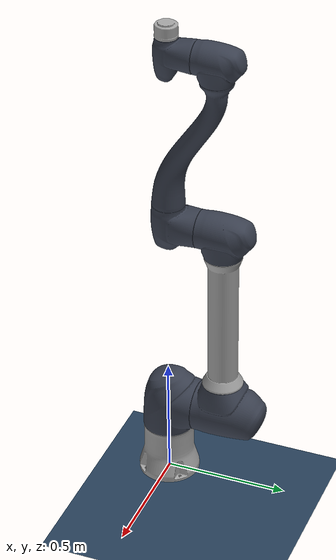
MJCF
<?xml version='1.0' encoding='utf-8'?>
<mujoco model="h2017 scene">
  <include file="h2017.xml" />
  <compiler angle="radian" meshdir="../" />

  <statistic center="0.3 0 0.4" extent="1" />

  <visual>
    <headlight diffuse="0.6 0.6 0.6" ambient="0.3 0.3 0.3" specular="0 0 0" />
    <rgba haze="0.15 0.25 0.35 1" />
    <global azimuth="120" elevation="-20" />
  </visual>

  <asset>
    <texture type="skybox" builtin="gradient" rgb1="0.3 0.5 0.7" rgb2="0 0 0" width="512" height="3072" />
    <texture type="2d" name="groundplane" builtin="checker" mark="edge" rgb1="0.2 0.3 0.4" rgb2="0.1 0.2 0.3" markrgb="0.8 0.8 0.8" width="300" height="300" />
    <material name="groundplane" texture="groundplane" texuniform="true" texrepeat="5 5" reflectance="0.2" />
  </asset>

  <worldbody>
    <light pos="0 0 1.5" dir="0 0 -1" directional="true" />
    <geom name="floor" size="0 0 0.05" type="plane" material="groundplane" />
  </worldbody>

</mujoco>

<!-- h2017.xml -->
<mujoco model="h2017">

  <asset>
    <mesh name="H2017_0_0" file="h2017/assets/H2017_0_0.stl" scale="0.001 0.001 0.001"/>
    <mesh name="H2017_1_0" file="h2017/assets/H2017_1_0.stl" scale="0.001 0.001 0.001"/>
    <mesh name="H2017_2_0" file="h2017/assets/H2017_2_0.stl" scale="0.001 0.001 0.001"/>
    <mesh name="H2017_2_1" file="h2017/assets/H2017_2_1.stl" scale="0.001 0.001 0.001"/>
    <mesh name="H2017_2_2" file="h2017/assets/H2017_2_2.stl" scale="0.001 0.001 0.001"/>
    <mesh name="H2017_3_0" file="h2017/assets/H2017_3_0.stl" scale="0.001 0.001 0.001"/>
    <mesh name="H2017_4_0" file="h2017/assets/H2017_4_0.stl" scale="0.001 0.001 0.001"/>
    <mesh name="H2017_4_1" file="h2017/assets/H2017_4_1.stl" scale="0.001 0.001 0.001"/>
    <mesh name="H2017_5_0" file="h2017/assets/H2017_5_0.stl" scale="0.001 0.001 0.001"/>
    <mesh name="H2017_6_0" file="h2017/assets/H2017_6_0.stl" scale="0.001 0.001 0.001"/>

    <material name="blue" rgba="0.227 0.251 0.31 1"/>
    <material name="metal" rgba="0.65 0.65 0.65 1"/>
  </asset>

  <worldbody>
    <geom type="mesh" group="1" density="0" mesh="H2017_0_0" material="metal"/>
    <body name="link_1" pos="0 0 0.3443">
      <inertial pos="-5e-05 0.11854 -0.059979" quat="0.433782 0.901018 -0.000262548 4.57795e-05" mass="20.253" diaginertia="0.5323 0.467441 0.161829"/>
      <joint name="joint_1" pos="0 0 0" axis="0 0 1" range="-6.2832 6.2832" actuatorfrcrange="-372 372" damping="2000" frictionloss="1"/>
      <geom type="mesh" group="1" density="0" mesh="H2017_1_0" material="blue"/>
      <body name="link_2" pos="0 0.0099 0" quat="0.499898 -0.500102 -0.5 -0.5">
        <inertial pos="0.38055 -1.7e-05 0.22527" quat="0.489962 0.509768 0.51069 0.489152" mass="28.536" diaginertia="3.0424 3.00638 0.148998"/>
        <joint name="joint_2" pos="0 0 0" axis="0 0 1" range="-2.1817 2.1817" actuatorfrcrange="-372 372" damping="2000" frictionloss="1"/>
        <geom type="mesh" group="1" density="0" mesh="H2017_2_0" material="blue"/>
        <geom type="mesh" group="1" density="0" mesh="H2017_2_1"  material="metal"/>
        <geom type="mesh" group="1" density="0" mesh="H2017_2_2"  material="blue"/>
        <body name="link_3" pos="0.845 0 0" quat="0.707035 0 0 0.707179">
          <inertial pos="-5.9e-05 -0.008325 0.049527" quat="0.993348 -0.115019 0.000748887 0.00545903" mass="6.421" diaginertia="0.0446304 0.0417332 0.0282805"/>
          <joint name="joint_3" pos="0 0 0" axis="0 0 1" range="-2.7925 2.7925" actuatorfrcrange="-372 372" damping="2000" frictionloss="1"/>
          <geom type="mesh" group="1" density="0" mesh="H2017_3_0" material="blue"/>
          <body name="link_4" pos="0 -0.734 0" quat="0.707035 0.707179 0 0">
            <inertial pos="7.7e-05 0.12896 -0.22056" quat="0.989015 -0.14779 -0.000253538 -0.00257207" mass="7.59" diaginertia="0.60329 0.598264 0.0295216"/>
            <joint name="joint_4" pos="0 0 0" axis="0 0 1" range="-6.2832 6.2832" actuatorfrcrange="-163 163" damping="1600" frictionloss="1"/>
            <geom type="mesh" group="1" density="0" mesh="H2017_4_0" material="blue"/>
            <geom type="mesh" group="1" density="0" mesh="H2017_4_1"  material="blue"/>
            <body name="link_5" quat="0.707035 -0.707179 0 0">
              <inertial pos="-6.1e-05 -0.000589 0.048812" quat="0.710562 0.0025434 -0.00204616 0.703627" mass="4.099" diaginertia="0.0238946 0.0213028 0.0145866"/>
              <joint name="joint_5" pos="0 0 0" axis="0 0 1" range="-6.2832 6.2832" actuatorfrcrange="-96 96" damping="1200" frictionloss="1"/>
              <geom type="mesh" group="1" density="0" mesh="H2017_5_0" material="blue"/>
              <body name="link_6" pos="0 -0.121 0" quat="0.707035 0.707179 0 0">
                <inertial pos="-3.3e-05 3.6e-05 -0.049443" quat="0.708678 0.705526 0.000127291 0.00288031" mass="0.897" diaginertia="0.00865824 0.00807292 0.00681834"/>
                <joint name="joint_6" pos="0 0 0" axis="0 0 1" range="-6.2832 6.2832" actuatorfrcrange="-50 50" damping="500" frictionloss="1"/>
                <geom type="mesh" group="1" density="0" mesh="H2017_6_0" material="metal"/>
              </body>
            </body>
          </body>
        </body>
      </body>
    </body>
  </worldbody>

	<actuator>
		<position joint="joint_1" kp="2" kv="0.002" ctrlrange="-2.617 2.617"/>
		<position joint="joint_2" kp="2" kv="0.002" ctrlrange="-1.57 1.57"/>
		<position joint="joint_3" kp="2" kv="0.002" ctrlrange="-2.617 2.617"/>
		<position joint="joint_4" kp="2" kv="0.002" ctrlrange="-2.617 2.617"/>
		<position joint="joint_5" kp="2" kv="0.002" ctrlrange="-2.617 2.617"/>
		<position joint="joint_6" kp="2" kv="0.002" ctrlrange="-2.617 2.617"/>
	</actuator>
</mujoco>
